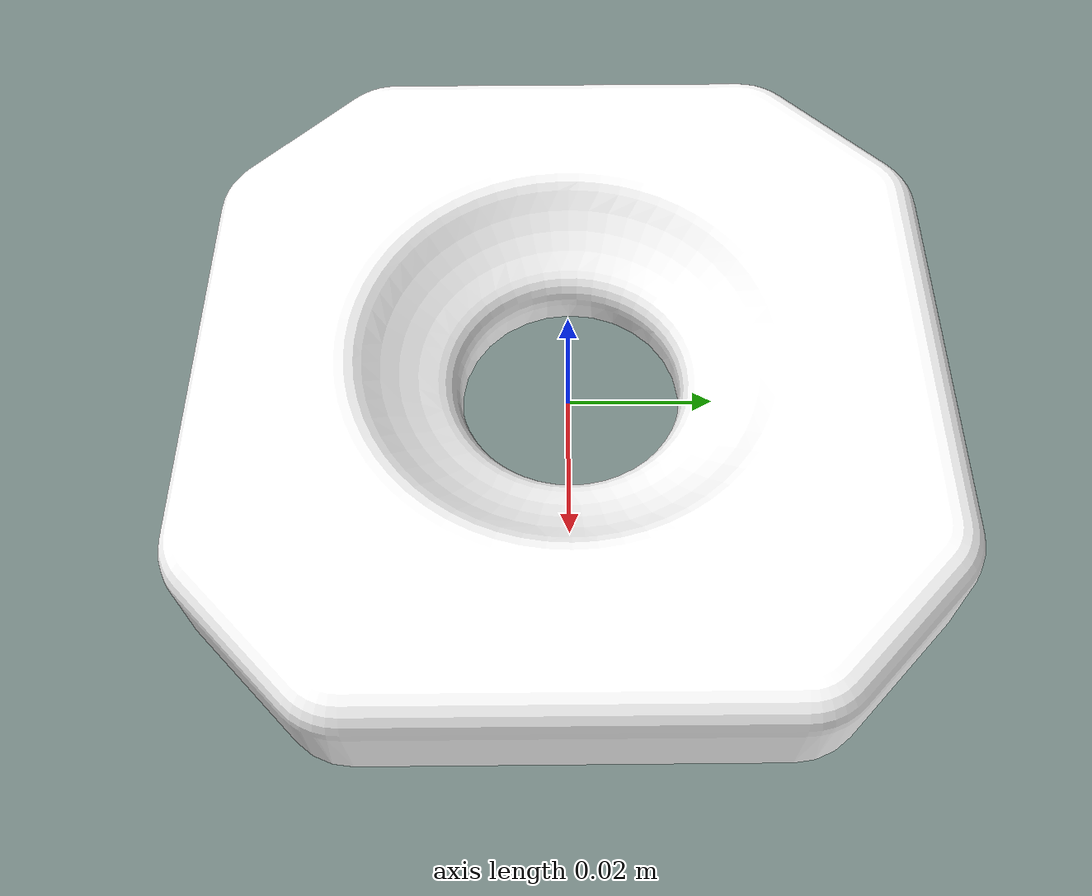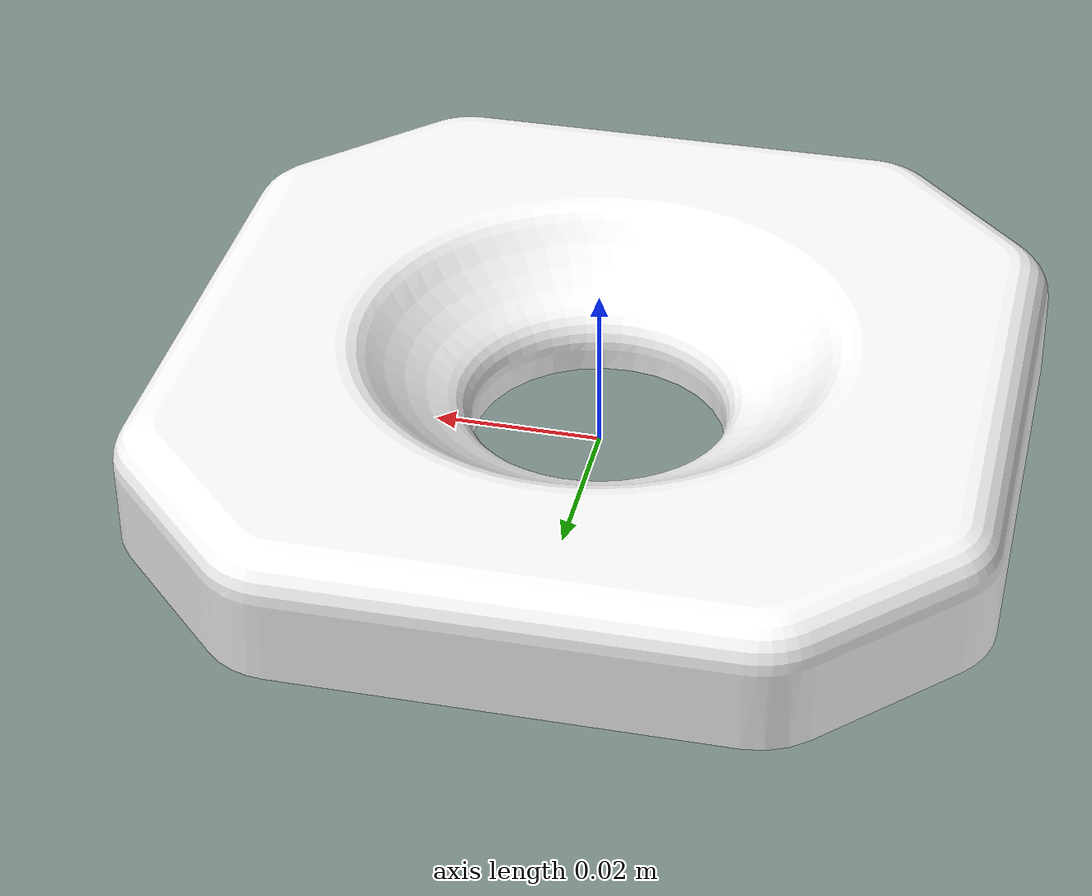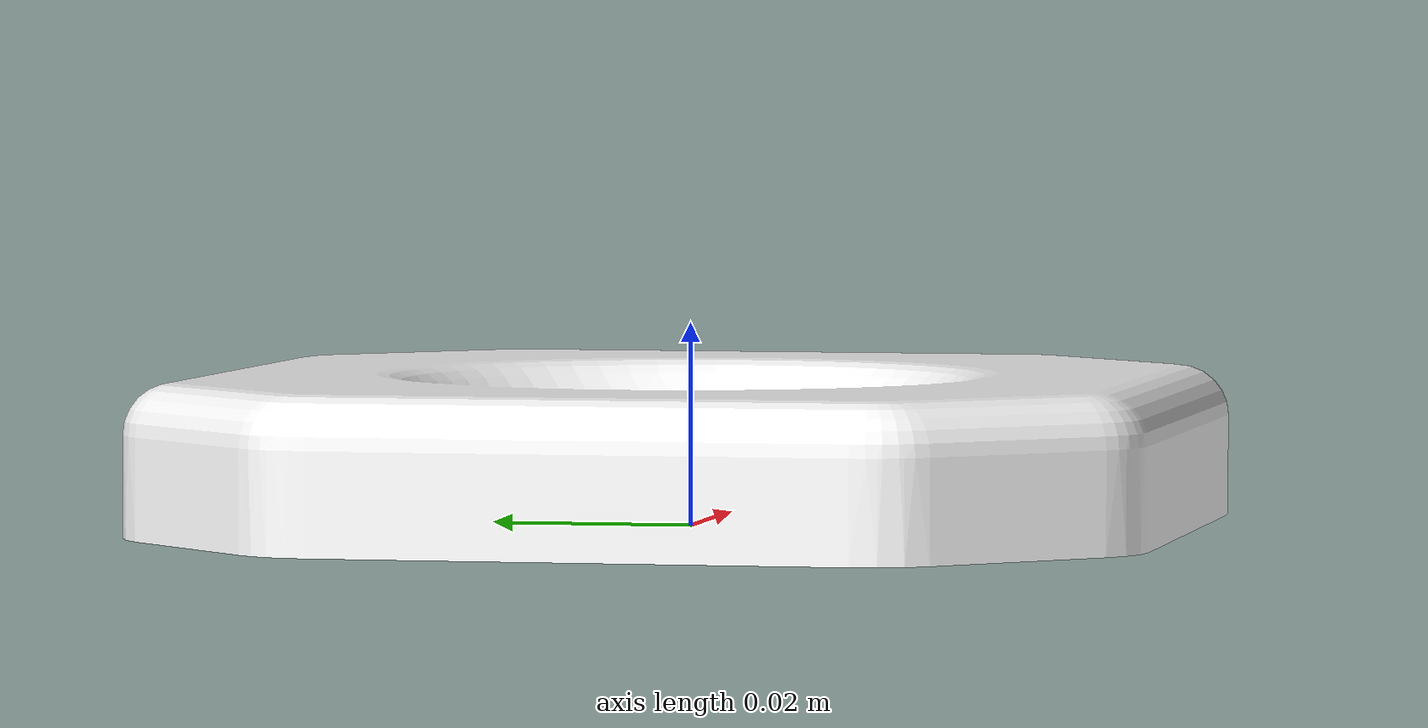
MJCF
<mujoco model="socket_0">
  <default>
    <default class="visual">
      <geom group="2" type="mesh" contype="0" conaffinity="0"/>
    </default>
    <default class="collision">
      <geom group="3" type="mesh" friction=".00001 .00001 .00001"/>
    </default>
  </default>
  <asset>
    <material name="white_high_gloss_plastic.007" specular="1.0" shininess="0.005212761999999999" rgba="1.000000 1.000000 1.000000 1.000000"/>
    <mesh file="socket_0.obj"/>
    <mesh file="socket_0_collision_0.obj"/>
    <mesh file="socket_0_collision_1.obj"/>
    <mesh file="socket_0_collision_2.obj"/>
    <mesh file="socket_0_collision_3.obj"/>
    <mesh file="socket_0_collision_4.obj"/>
    <mesh file="socket_0_collision_5.obj"/>
    <mesh file="socket_0_collision_6.obj"/>
    <mesh file="socket_0_collision_7.obj"/>
    <mesh file="socket_0_collision_8.obj"/>
    <mesh file="socket_0_collision_9.obj"/>
    <mesh file="socket_0_collision_10.obj"/>
    <mesh file="socket_0_collision_11.obj"/>
    <mesh file="socket_0_collision_12.obj"/>
    <mesh file="socket_0_collision_13.obj"/>
    <mesh file="socket_0_collision_14.obj"/>
    <mesh file="socket_0_collision_15.obj"/>
    <mesh file="socket_0_collision_16.obj"/>
    <mesh file="socket_0_collision_17.obj"/>
    <mesh file="socket_0_collision_18.obj"/>
    <mesh file="socket_0_collision_19.obj"/>
    <mesh file="socket_0_collision_20.obj"/>
    <mesh file="socket_0_collision_21.obj"/>
    <mesh file="socket_0_collision_22.obj"/>
    <mesh file="socket_0_collision_23.obj"/>
    <mesh file="socket_0_collision_24.obj"/>
    <mesh file="socket_0_collision_25.obj"/>
  </asset>
  <worldbody>
    <body name="socket_0">
      <geom material="white_high_gloss_plastic.007" mesh="socket_0" class="visual"/>
      <geom mesh="socket_0_collision_0" rgba="0.23649213968686722 0.7911509181972559 0.40313915787950205 1" class="collision"/>
      <geom mesh="socket_0_collision_1" rgba="0.19368513322558034 0.44916353343626847 0.056958094343018684 1" class="collision"/>
      <geom mesh="socket_0_collision_2" rgba="0.6725639734800752 0.24785359445666244 0.6620770436916837 1" class="collision"/>
      <geom mesh="socket_0_collision_3" rgba="0.5185867335521316 0.34907014376242707 0.052593904700561356 1" class="collision"/>
      <geom mesh="socket_0_collision_4" rgba="0.6859863167624035 0.1597513647605775 0.8129643651469673 1" class="collision"/>
      <geom mesh="socket_0_collision_5" rgba="0.8876904778796196 0.09736472614396963 0.7741956865658921 1" class="collision"/>
      <geom mesh="socket_0_collision_6" rgba="0.3830371522277931 0.008364805121188867 0.3439480191952905 1" class="collision"/>
      <geom mesh="socket_0_collision_7" rgba="0.8942940203503628 0.7336620660409796 0.9612154959577358 1" class="collision"/>
      <geom mesh="socket_0_collision_8" rgba="0.39442475522728215 0.727983386008788 0.4592831803513794 1" class="collision"/>
      <geom mesh="socket_0_collision_9" rgba="0.6622668027039036 0.4852825780775679 0.7470280084830528 1" class="collision"/>
      <geom mesh="socket_0_collision_10" rgba="0.4044533473635825 0.1296147229176019 0.85399084168494 1" class="collision"/>
      <geom mesh="socket_0_collision_11" rgba="0.9513520522886493 0.9591518106857395 0.019823496270590213 1" class="collision"/>
      <geom mesh="socket_0_collision_12" rgba="0.6885477925313509 0.4754385761916824 0.3478504604859666 1" class="collision"/>
      <geom mesh="socket_0_collision_13" rgba="0.6828341369506836 0.5707913127776052 0.15855521591704202 1" class="collision"/>
      <geom mesh="socket_0_collision_14" rgba="0.3712593011667693 0.44849141954211413 0.15112772654082163 1" class="collision"/>
      <geom mesh="socket_0_collision_15" rgba="0.9080922789184079 0.2516122957442395 0.9788018048654908 1" class="collision"/>
      <geom mesh="socket_0_collision_16" rgba="0.6456303861431762 0.8587552236248558 0.9759097817759311 1" class="collision"/>
      <geom mesh="socket_0_collision_17" rgba="0.8983419664635255 0.8769336824217655 0.5484428761972354 1" class="collision"/>
      <geom mesh="socket_0_collision_18" rgba="0.5726379031082067 0.7999612126120157 0.24339131081586074 1" class="collision"/>
      <geom mesh="socket_0_collision_19" rgba="0.6074711578179017 0.9146836761838913 0.7324465067764282 1" class="collision"/>
      <geom mesh="socket_0_collision_20" rgba="0.004576023190384304 0.292179903244854 0.7695014150936472 1" class="collision"/>
      <geom mesh="socket_0_collision_21" rgba="0.7581000466666621 0.712336664483007 0.03733122526409938 1" class="collision"/>
      <geom mesh="socket_0_collision_22" rgba="0.02058762964503824 0.07463034935062007 0.22267319250300632 1" class="collision"/>
      <geom mesh="socket_0_collision_23" rgba="0.34739810953660255 0.7199511313354054 0.3810702235709854 1" class="collision"/>
      <geom mesh="socket_0_collision_24" rgba="0.7913053259550604 0.5174411942410169 0.10200937536502819 1" class="collision"/>
      <geom mesh="socket_0_collision_25" rgba="0.28785435832455397 0.1916005334020079 0.38343690939213404 1" class="collision"/>
    </body>
  </worldbody>
</mujoco>
